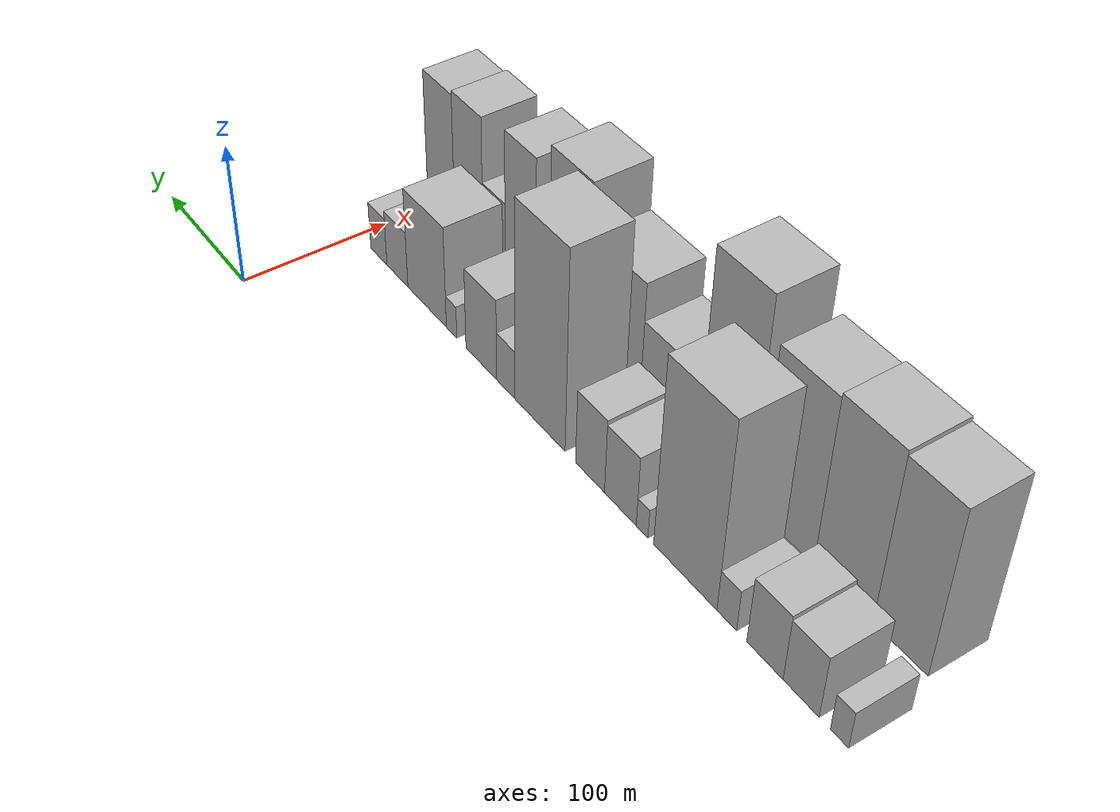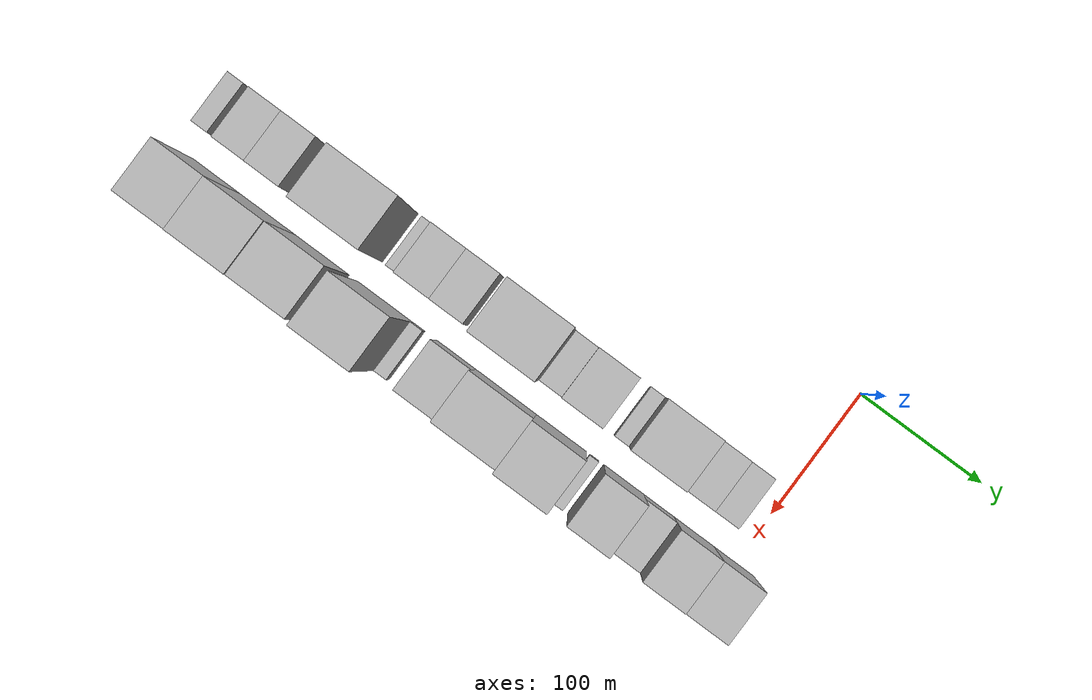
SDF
<sdf version="1.6">
 <world name="default">
  <model name="building_1">
   <static>1</static>
   <pose>100.0000 -453.5102 0 0.000000 0.000000 0.000000</pose>
   <link name="link">
    <pose>0 0 13.50 0 0 0</pose>
    <collision name="collision"><geometry><box><size>40.0000 12.9796 27.0000</size></box></geometry></collision>
    <visual name="visual">
     <cast_shadows>0</cast_shadows>
     <geometry><box><size>40.0000 12.9796 27.0000</size></box></geometry>
     <material>
      <script>
       <uri>model://HANNAS_wall/materials/scripts</uri>
       <uri>model://HANNAS_wall/materials/textures</uri>
       <name>vrc/HANNAS_wall</name>
      </script>
     </material>
    </visual>
   </link>
  </model>
  <model name="building_2">
   <static>1</static>
   <pose>100.0000 -425.6688 0 0.000000 0.000000 0.000000</pose>
   <link name="link">
    <pose>0 0 22.50 0 0 0</pose>
    <collision name="collision"><geometry><box><size>40.0000 26.7033 45.0000</size></box></geometry></collision>
    <visual name="visual">
     <cast_shadows>0</cast_shadows>
     <geometry><box><size>40.0000 26.7033 45.0000</size></box></geometry>
     <material>
      <script>
       <uri>model://HANNAS_wall/materials/scripts</uri>
       <uri>model://HANNAS_wall/materials/textures</uri>
       <name>vrc/HANNAS_wall</name>
      </script>
     </material>
    </visual>
   </link>
  </model>
  <model name="building_3">
   <static>1</static>
   <pose>100.0000 -398.4008 0 0.000000 0.000000 0.000000</pose>
   <link name="link">
    <pose>0 0 24.00 0 0 0</pose>
    <collision name="collision"><geometry><box><size>40.0000 27.8327 48.0000</size></box></geometry></collision>
    <visual name="visual">
     <cast_shadows>0</cast_shadows>
     <geometry><box><size>40.0000 27.8327 48.0000</size></box></geometry>
     <material>
      <script>
       <uri>model://HANNAS_wall/materials/scripts</uri>
       <uri>model://HANNAS_wall/materials/textures</uri>
       <name>vrc/HANNAS_wall</name>
      </script>
     </material>
    </visual>
   </link>
  </model>
  <model name="building_4">
   <static>1</static>
   <pose>100.0000 -368.6258 0 0.000000 0.000000 0.000000</pose>
   <link name="link">
    <pose>0 0 15.00 0 0 0</pose>
    <collision name="collision"><geometry><box><size>40.0000 15.7172 30.0000</size></box></geometry></collision>
    <visual name="visual">
     <cast_shadows>0</cast_shadows>
     <geometry><box><size>40.0000 15.7172 30.0000</size></box></geometry>
     <material>
      <script>
       <uri>model://HANNAS_wall/materials/scripts</uri>
       <uri>model://HANNAS_wall/materials/textures</uri>
       <name>vrc/HANNAS_wall</name>
      </script>
     </material>
    </visual>
   </link>
  </model>
  <model name="building_5">
   <static>1</static>
   <pose>100.0000 -334.2858 0 0.000000 0.000000 0.000000</pose>
   <link name="link">
    <pose>0 0 67.50 0 0 0</pose>
    <collision name="collision"><geometry><box><size>40.0000 52.9629 135.0000</size></box></geometry></collision>
    <visual name="visual">
     <cast_shadows>0</cast_shadows>
     <geometry><box><size>40.0000 52.9629 135.0000</size></box></geometry>
     <material>
      <script>
       <uri>model://HANNAS_wall/materials/scripts</uri>
       <uri>model://HANNAS_wall/materials/textures</uri>
       <name>vrc/HANNAS_wall</name>
      </script>
     </material>
    </visual>
   </link>
  </model>
  <model name="building_6">
   <static>1</static>
   <pose>100.0000 -297.6774 0 0.000000 0.000000 0.000000</pose>
   <link name="link">
    <pose>0 0 10.50 0 0 0</pose>
    <collision name="collision"><geometry><box><size>40.0000 10.2538 21.0000</size></box></geometry></collision>
    <visual name="visual">
     <cast_shadows>0</cast_shadows>
     <geometry><box><size>40.0000 10.2538 21.0000</size></box></geometry>
     <material>
      <script>
       <uri>model://HANNAS_wall/materials/scripts</uri>
       <uri>model://HANNAS_wall/materials/textures</uri>
       <name>vrc/HANNAS_wall</name>
      </script>
     </material>
    </visual>
   </link>
  </model>
  <model name="building_7">
   <static>1</static>
   <pose>100.0000 -278.2474 0 0.000000 0.000000 0.000000</pose>
   <link name="link">
    <pose>0 0 25.50 0 0 0</pose>
    <collision name="collision"><geometry><box><size>40.0000 28.6063 51.0000</size></box></geometry></collision>
    <visual name="visual">
     <cast_shadows>0</cast_shadows>
     <geometry><box><size>40.0000 28.6063 51.0000</size></box></geometry>
     <material>
      <script>
       <uri>model://HANNAS_wall/materials/scripts</uri>
       <uri>model://HANNAS_wall/materials/textures</uri>
       <name>vrc/HANNAS_wall</name>
      </script>
     </material>
    </visual>
   </link>
  </model>
  <model name="building_8">
   <static>1</static>
   <pose>100.0000 -250.4310 0 0.000000 0.000000 0.000000</pose>
   <link name="link">
    <pose>0 0 27.00 0 0 0</pose>
    <collision name="collision"><geometry><box><size>40.0000 27.0266 54.0000</size></box></geometry></collision>
    <visual name="visual">
     <cast_shadows>0</cast_shadows>
     <geometry><box><size>40.0000 27.0266 54.0000</size></box></geometry>
     <material>
      <script>
       <uri>model://HANNAS_wall/materials/scripts</uri>
       <uri>model://HANNAS_wall/materials/textures</uri>
       <name>vrc/HANNAS_wall</name>
      </script>
     </material>
    </visual>
   </link>
  </model>
  <model name="building_9">
   <static>1</static>
   <pose>100.0000 -201.9144 0 0.000000 0.000000 0.000000</pose>
   <link name="link">
    <pose>0 0 72.00 0 0 0</pose>
    <collision name="collision"><geometry><box><size>40.0000 50.0067 144.0000</size></box></geometry></collision>
    <visual name="visual">
     <cast_shadows>0</cast_shadows>
     <geometry><box><size>40.0000 50.0067 144.0000</size></box></geometry>
     <material>
      <script>
       <uri>model://HANNAS_wall/materials/scripts</uri>
       <uri>model://HANNAS_wall/materials/textures</uri>
       <name>vrc/HANNAS_wall</name>
      </script>
     </material>
    </visual>
   </link>
  </model>
  <model name="building_10">
   <static>1</static>
   <pose>100.0000 -167.6669 0 0.000000 0.000000 0.000000</pose>
   <link name="link">
    <pose>0 0 18.00 0 0 0</pose>
    <collision name="collision"><geometry><box><size>40.0000 18.4882 36.0000</size></box></geometry></collision>
    <visual name="visual">
     <cast_shadows>0</cast_shadows>
     <geometry><box><size>40.0000 18.4882 36.0000</size></box></geometry>
     <material>
      <script>
       <uri>model://HANNAS_wall/materials/scripts</uri>
       <uri>model://HANNAS_wall/materials/textures</uri>
       <name>vrc/HANNAS_wall</name>
      </script>
     </material>
    </visual>
   </link>
  </model>
  <model name="building_11">
   <static>1</static>
   <pose>100.0000 -142.0239 0 0.000000 0.000000 0.000000</pose>
   <link name="link">
    <pose>0 0 30.00 0 0 0</pose>
    <collision name="collision"><geometry><box><size>40.0000 32.7978 60.0000</size></box></geometry></collision>
    <visual name="visual">
     <cast_shadows>0</cast_shadows>
     <geometry><box><size>40.0000 32.7978 60.0000</size></box></geometry>
     <material>
      <script>
       <uri>model://HANNAS_wall/materials/scripts</uri>
       <uri>model://HANNAS_wall/materials/textures</uri>
       <name>vrc/HANNAS_wall</name>
      </script>
     </material>
    </visual>
   </link>
  </model>
  <model name="building_12">
   <static>1</static>
   <pose>100.0000 -109.8862 0 0.000000 0.000000 0.000000</pose>
   <link name="link">
    <pose>0 0 12.00 0 0 0</pose>
    <collision name="collision"><geometry><box><size>40.0000 11.4776 24.0000</size></box></geometry></collision>
    <visual name="visual">
     <cast_shadows>0</cast_shadows>
     <geometry><box><size>40.0000 11.4776 24.0000</size></box></geometry>
     <material>
      <script>
       <uri>model://HANNAS_wall/materials/scripts</uri>
       <uri>model://HANNAS_wall/materials/textures</uri>
       <name>vrc/HANNAS_wall</name>
      </script>
     </material>
    </visual>
   </link>
  </model>
  <model name="building_13">
   <static>1</static>
   <pose>100.0000 -82.1685 0 0.000000 0.000000 0.000000</pose>
   <link name="link">
    <pose>0 0 37.50 0 0 0</pose>
    <collision name="collision"><geometry><box><size>40.0000 43.9578 75.0000</size></box></geometry></collision>
    <visual name="visual">
     <cast_shadows>0</cast_shadows>
     <geometry><box><size>40.0000 43.9578 75.0000</size></box></geometry>
     <material>
      <script>
       <uri>model://HANNAS_wall/materials/scripts</uri>
       <uri>model://HANNAS_wall/materials/textures</uri>
       <name>vrc/HANNAS_wall</name>
      </script>
     </material>
    </visual>
   </link>
  </model>
  <model name="building_14">
   <static>1</static>
   <pose>100.0000 -47.7498 0 0.000000 0.000000 0.000000</pose>
   <link name="link">
    <pose>0 0 21.00 0 0 0</pose>
    <collision name="collision"><geometry><box><size>40.0000 24.8795 42.0000</size></box></geometry></collision>
    <visual name="visual">
     <cast_shadows>0</cast_shadows>
     <geometry><box><size>40.0000 24.8795 42.0000</size></box></geometry>
     <material>
      <script>
       <uri>model://HANNAS_wall/materials/scripts</uri>
       <uri>model://HANNAS_wall/materials/textures</uri>
       <name>vrc/HANNAS_wall</name>
      </script>
     </material>
    </visual>
   </link>
  </model>
  <model name="building_15">
   <static>1</static>
   <pose>100.0000 -25.5323 0 0.000000 0.000000 0.000000</pose>
   <link name="link">
    <pose>0 0 18.00 0 0 0</pose>
    <collision name="collision"><geometry><box><size>40.0000 19.5555 36.0000</size></box></geometry></collision>
    <visual name="visual">
     <cast_shadows>0</cast_shadows>
     <geometry><box><size>40.0000 19.5555 36.0000</size></box></geometry>
     <material>
      <script>
       <uri>model://HANNAS_wall/materials/scripts</uri>
       <uri>model://HANNAS_wall/materials/textures</uri>
       <name>vrc/HANNAS_wall</name>
      </script>
     </material>
    </visual>
   </link>
  </model>
  <model name="building_29">
   <static>1</static>
   <pose>160.0000 -430.1446 0 0.000000 0.000000 0.000000</pose>
   <link name="link">
    <pose>0 0 60.00 0 0 0</pose>
    <collision name="collision"><geometry><box><size>40.0000 39.7107 120.0000</size></box></geometry></collision>
    <visual name="visual">
     <cast_shadows>0</cast_shadows>
     <geometry><box><size>40.0000 39.7107 120.0000</size></box></geometry>
     <material>
      <script>
       <uri>model://HANNAS_wall/materials/scripts</uri>
       <uri>model://HANNAS_wall/materials/textures</uri>
       <name>vrc/HANNAS_wall</name>
      </script>
     </material>
    </visual>
   </link>
  </model>
  <model name="building_30">
   <static>1</static>
   <pose>160.0000 -387.6719 0 0.000000 0.000000 0.000000</pose>
   <link name="link">
    <pose>0 0 61.50 0 0 0</pose>
    <collision name="collision"><geometry><box><size>40.0000 45.2346 123.0000</size></box></geometry></collision>
    <visual name="visual">
     <cast_shadows>0</cast_shadows>
     <geometry><box><size>40.0000 45.2346 123.0000</size></box></geometry>
     <material>
      <script>
       <uri>model://HANNAS_wall/materials/scripts</uri>
       <uri>model://HANNAS_wall/materials/textures</uri>
       <name>vrc/HANNAS_wall</name>
      </script>
     </material>
    </visual>
   </link>
  </model>
  <model name="building_31">
   <static>1</static>
   <pose>160.0000 -342.6383 0 0.000000 0.000000 0.000000</pose>
   <link name="link">
    <pose>0 0 60.00 0 0 0</pose>
    <collision name="collision"><geometry><box><size>40.0000 44.8327 120.0000</size></box></geometry></collision>
    <visual name="visual">
     <cast_shadows>0</cast_shadows>
     <geometry><box><size>40.0000 44.8327 120.0000</size></box></geometry>
     <material>
      <script>
       <uri>model://HANNAS_wall/materials/scripts</uri>
       <uri>model://HANNAS_wall/materials/textures</uri>
       <name>vrc/HANNAS_wall</name>
      </script>
     </material>
    </visual>
   </link>
  </model>
  <model name="building_32">
   <static>1</static>
   <pose>160.0000 -290.4092 0 0.000000 0.000000 0.000000</pose>
   <link name="link">
    <pose>0 0 73.50 0 0 0</pose>
    <collision name="collision"><geometry><box><size>40.0000 45.6254 147.0000</size></box></geometry></collision>
    <visual name="visual">
     <cast_shadows>0</cast_shadows>
     <geometry><box><size>40.0000 45.6254 147.0000</size></box></geometry>
     <material>
      <script>
       <uri>model://HANNAS_wall/materials/scripts</uri>
       <uri>model://HANNAS_wall/materials/textures</uri>
       <name>vrc/HANNAS_wall</name>
      </script>
     </material>
    </visual>
   </link>
  </model>
  <model name="building_33">
   <static>1</static>
   <pose>160.0000 -262.5299 0 0.000000 0.000000 0.000000</pose>
   <link name="link">
    <pose>0 0 10.50 0 0 0</pose>
    <collision name="collision"><geometry><box><size>40.0000 10.1330 21.0000</size></box></geometry></collision>
    <visual name="visual">
     <cast_shadows>0</cast_shadows>
     <geometry><box><size>40.0000 10.1330 21.0000</size></box></geometry>
     <material>
      <script>
       <uri>model://HANNAS_wall/materials/scripts</uri>
       <uri>model://HANNAS_wall/materials/textures</uri>
       <name>vrc/HANNAS_wall</name>
      </script>
     </material>
    </visual>
   </link>
  </model>
  <model name="building_34">
   <static>1</static>
   <pose>160.0000 -231.2802 0 0.000000 0.000000 0.000000</pose>
   <link name="link">
    <pose>0 0 28.50 0 0 0</pose>
    <collision name="collision"><geometry><box><size>40.0000 32.3664 57.0000</size></box></geometry></collision>
    <visual name="visual">
     <cast_shadows>0</cast_shadows>
     <geometry><box><size>40.0000 32.3664 57.0000</size></box></geometry>
     <material>
      <script>
       <uri>model://HANNAS_wall/materials/scripts</uri>
       <uri>model://HANNAS_wall/materials/textures</uri>
       <name>vrc/HANNAS_wall</name>
      </script>
     </material>
    </visual>
   </link>
  </model>
  <model name="building_35">
   <static>1</static>
   <pose>160.0000 -189.9371 0 0.000000 0.000000 0.000000</pose>
   <link name="link">
    <pose>0 0 42.00 0 0 0</pose>
    <collision name="collision"><geometry><box><size>40.0000 50.3199 84.0000</size></box></geometry></collision>
    <visual name="visual">
     <cast_shadows>0</cast_shadows>
     <geometry><box><size>40.0000 50.3199 84.0000</size></box></geometry>
     <material>
      <script>
       <uri>model://HANNAS_wall/materials/scripts</uri>
       <uri>model://HANNAS_wall/materials/textures</uri>
       <name>vrc/HANNAS_wall</name>
      </script>
     </material>
    </visual>
   </link>
  </model>
  <model name="building_36">
   <static>1</static>
   <pose>160.0000 -144.2736 0 0.000000 0.000000 0.000000</pose>
   <link name="link">
    <pose>0 0 60.00 0 0 0</pose>
    <collision name="collision"><geometry><box><size>40.0000 41.0072 120.0000</size></box></geometry></collision>
    <visual name="visual">
     <cast_shadows>0</cast_shadows>
     <geometry><box><size>40.0000 41.0072 120.0000</size></box></geometry>
     <material>
      <script>
       <uri>model://HANNAS_wall/materials/scripts</uri>
       <uri>model://HANNAS_wall/materials/textures</uri>
       <name>vrc/HANNAS_wall</name>
      </script>
     </material>
    </visual>
   </link>
  </model>
  <model name="building_37">
   <static>1</static>
   <pose>160.0000 -117.0435 0 0.000000 0.000000 0.000000</pose>
   <link name="link">
    <pose>0 0 7.50 0 0 0</pose>
    <collision name="collision"><geometry><box><size>40.0000 7.4530 15.0000</size></box></geometry></collision>
    <visual name="visual">
     <cast_shadows>0</cast_shadows>
     <geometry><box><size>40.0000 7.4530 15.0000</size></box></geometry>
     <material>
      <script>
       <uri>model://HANNAS_wall/materials/scripts</uri>
       <uri>model://HANNAS_wall/materials/textures</uri>
       <name>vrc/HANNAS_wall</name>
      </script>
     </material>
    </visual>
   </link>
  </model>
  <model name="building_38">
   <static>1</static>
   <pose>160.0000 -92.8126 0 0.000000 0.000000 0.000000</pose>
   <link name="link">
    <pose>0 0 51.00 0 0 0</pose>
    <collision name="collision"><geometry><box><size>40.0000 33.0088 102.0000</size></box></geometry></collision>
    <visual name="visual">
     <cast_shadows>0</cast_shadows>
     <geometry><box><size>40.0000 33.0088 102.0000</size></box></geometry>
     <material>
      <script>
       <uri>model://HANNAS_wall/materials/scripts</uri>
       <uri>model://HANNAS_wall/materials/textures</uri>
       <name>vrc/HANNAS_wall</name>
      </script>
     </material>
    </visual>
   </link>
  </model>
  <model name="building_39">
   <static>1</static>
   <pose>160.0000 -63.7380 0 0.000000 0.000000 0.000000</pose>
   <link name="link">
    <pose>0 0 24.00 0 0 0</pose>
    <collision name="collision"><geometry><box><size>40.0000 25.1404 48.0000</size></box></geometry></collision>
    <visual name="visual">
     <cast_shadows>0</cast_shadows>
     <geometry><box><size>40.0000 25.1404 48.0000</size></box></geometry>
     <material>
      <script>
       <uri>model://HANNAS_wall/materials/scripts</uri>
       <uri>model://HANNAS_wall/materials/textures</uri>
       <name>vrc/HANNAS_wall</name>
      </script>
     </material>
    </visual>
   </link>
  </model>
  <model name="building_40">
   <static>1</static>
   <pose>160.0000 -34.6595 0 0.000000 0.000000 0.000000</pose>
   <link name="link">
    <pose>0 0 48.00 0 0 0</pose>
    <collision name="collision"><geometry><box><size>40.0000 33.0166 96.0000</size></box></geometry></collision>
    <visual name="visual">
     <cast_shadows>0</cast_shadows>
     <geometry><box><size>40.0000 33.0166 96.0000</size></box></geometry>
     <material>
      <script>
       <uri>model://HANNAS_wall/materials/scripts</uri>
       <uri>model://HANNAS_wall/materials/textures</uri>
       <name>vrc/HANNAS_wall</name>
      </script>
     </material>
    </visual>
   </link>
  </model>
  <model name="building_41">
   <static>1</static>
   <pose>160.0000 -1.7504 0 0.000000 0.000000 0.000000</pose>
   <link name="link">
    <pose>0 0 46.50 0 0 0</pose>
    <collision name="collision"><geometry><box><size>40.0000 32.8015 93.0000</size></box></geometry></collision>
    <visual name="visual">
     <cast_shadows>0</cast_shadows>
     <geometry><box><size>40.0000 32.8015 93.0000</size></box></geometry>
     <material>
      <script>
       <uri>model://HANNAS_wall/materials/scripts</uri>
       <uri>model://HANNAS_wall/materials/textures</uri>
       <name>vrc/HANNAS_wall</name>
      </script>
     </material>
    </visual>
   </link>
  </model>
 </world>
</sdf>
